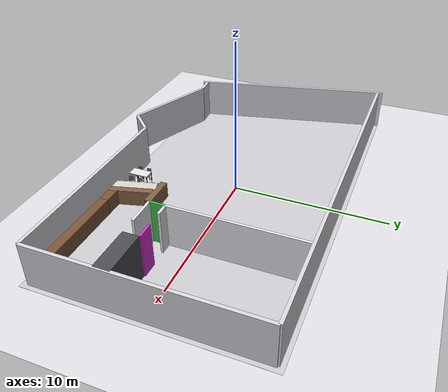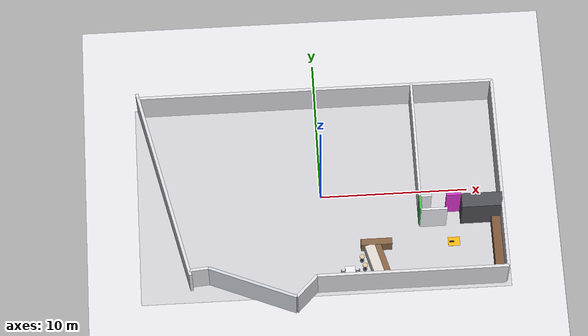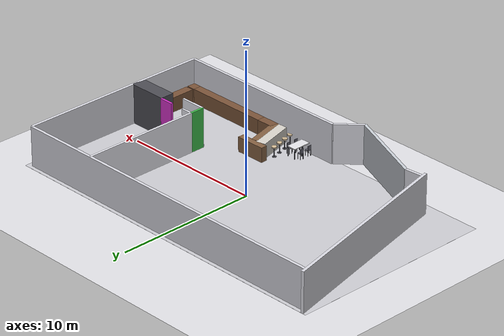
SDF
<sdf version="1.8">
 <world name="restaurant_blueprint_world">
  <model name="ground_plane">
   <static>true</static>
   <link name="link">
    <collision name="collision">
     <geometry><plane><normal>0 0 1</normal><size>120 120</size></plane></geometry>
    </collision>
    <visual name="visual">
     <geometry><plane><normal>0 0 1</normal><size>120 120</size></plane></geometry>
     <material>
      <ambient>0.88 0.88 0.90 1</ambient>
      <diffuse>0.88 0.88 0.90 1</diffuse>
      <specular>0.1 0.1 0.1 1</specular>
     </material>
    </visual>
   </link>
  </model>
  <model name="restaurant_boundary">
   <static>true</static>
   <link name="interior_floor">
    <visual name="floor_vis">
     <pose>0.0 0.0 0.002 0 0 0</pose>
     <geometry><box><size>25.0 14.5 0.004</size></box></geometry>
     <material>
      <ambient>0.80 0.80 0.82 1</ambient>
      <diffuse>0.80 0.80 0.82 1</diffuse>
      <specular>0.15 0.15 0.15 1</specular>
     </material>
    </visual>
   </link>
   <link name="perimeter_walls">
    <visual name="wall_north_vis">
     <pose>0.0 6.890 1.40 0 0 0</pose>
     <geometry><box><size>24.27 0.20 2.80</size></box></geometry>
     <material><ambient>0.85 0.85 0.88 1</ambient><diffuse>0.85 0.85 0.88 1</diffuse></material>
    </visual>
    <collision name="wall_north_col">
     <pose>0.0 6.890 1.40 0 0 0</pose>
     <geometry><box><size>24.27 0.20 2.80</size></box></geometry>
    </collision>
    <visual name="wall_east_vis">
     <pose>12.135 0.0 1.40 0 0 -1.570796</pose>
     <geometry><box><size>13.78 0.20 2.80</size></box></geometry>
     <material><ambient>0.85 0.85 0.88 1</ambient><diffuse>0.85 0.85 0.88 1</diffuse></material>
    </visual>
    <collision name="wall_east_col">
     <pose>12.135 0.0 1.40 0 0 -1.570796</pose>
     <geometry><box><size>13.78 0.20 2.80</size></box></geometry>
    </collision>
    <visual name="wall_south_east_vis">
     <pose>5.745 -6.890 1.40 0 0 0</pose>
     <geometry><box><size>12.78 0.20 2.80</size></box></geometry>
     <material><ambient>0.85 0.85 0.88 1</ambient><diffuse>0.85 0.85 0.88 1</diffuse></material>
    </visual>
    <collision name="wall_south_east_col">
     <pose>5.745 -6.890 1.40 0 0 0</pose>
     <geometry><box><size>12.78 0.20 2.80</size></box></geometry>
    </collision>
    <visual name="wall_entrance_slant_right_vis">
     <pose>-1.352 -7.597 1.40 0 0 -2.356194</pose>
     <geometry><box><size>2.00 0.20 2.80</size></box></geometry>
     <material><ambient>0.85 0.85 0.88 1</ambient><diffuse>0.85 0.85 0.88 1</diffuse></material>
    </visual>
    <collision name="wall_entrance_slant_right_col">
     <pose>-1.352 -7.597 1.40 0 0 -2.356194</pose>
     <geometry><box><size>2.00 0.20 2.80</size></box></geometry>
    </collision>
    <visual name="wall_main_entrance_vis">
     <pose>-4.946 -7.108 1.40 0 0 2.74889</pose>
     <geometry><box><size>6.25 0.20 2.80</size></box></geometry>
     <material><ambient>0.80 0.82 0.85 1</ambient><diffuse>0.80 0.82 0.85 1</diffuse></material>
    </visual>
    <collision name="wall_main_entrance_col">
     <pose>-4.946 -7.108 1.40 0 0 2.74889</pose>
     <geometry><box><size>6.25 0.20 2.80</size></box></geometry>
    </collision>
    <visual name="wall_entrance_indent_vis">
     <pose>-8.481 -5.969 1.40 0 0 -3.0545</pose>
     <geometry><box><size>1.30 0.20 2.80</size></box></geometry>
     <material><ambient>0.85 0.85 0.88 1</ambient><diffuse>0.85 0.85 0.88 1</diffuse></material>
    </visual>
    <collision name="wall_entrance_indent_col">
     <pose>-8.481 -5.969 1.40 0 0 -3.0545</pose>
     <geometry><box><size>1.30 0.20 2.80</size></box></geometry>
    </collision>
    <visual name="wall_west_slant_vis">
     <pose>-10.631 0.432 1.40 0 0 1.7994</pose>
     <geometry><box><size>13.96 0.20 2.80</size></box></geometry>
     <material><ambient>0.85 0.85 0.88 1</ambient><diffuse>0.85 0.85 0.88 1</diffuse></material>
    </visual>
    <collision name="wall_west_slant_col">
     <pose>-10.631 0.432 1.40 0 0 1.7994</pose>
     <geometry><box><size>13.96 0.20 2.80</size></box></geometry>
    </collision>
   </link>
   <link name="kitchen_walls">
    <visual name="kitchen_vert_main_vis">
     <pose>6.605 2.690 1.40 0 0 -1.570796</pose>
     <geometry><box><size>8.40 0.15 2.80</size></box></geometry>
     <material><ambient>0.92 0.92 0.95 1</ambient><diffuse>0.92 0.92 0.95 1</diffuse></material>
    </visual>
    <collision name="kitchen_vert_main_col">
     <pose>6.605 2.690 1.40 0 0 -1.570796</pose>
     <geometry><box><size>8.40 0.15 2.80</size></box></geometry>
    </collision>
    <visual name="wall_robot_dock_green_vis">
     <pose>6.605 -2.010 1.40 0 0 -1.570796</pose>
     <geometry><box><size>1.00 0.15 2.80</size></box></geometry>
     <material>
      <ambient>0.20 0.65 0.25 1</ambient>
      <diffuse>0.25 0.75 0.30 1</diffuse>
      <specular>0.1 0.1 0.1 1</specular>
     </material>
    </visual>
    <collision name="wall_robot_dock_green_col">
     <pose>6.605 -2.010 1.40 0 0 -1.570796</pose>
     <geometry><box><size>1.00 0.15 2.80</size></box></geometry>
    </collision>
    <visual name="wall_dock_stub_vis">
     <pose>6.995 -1.510 1.40 0 0 0</pose>
     <geometry><box><size>0.78 0.15 2.80</size></box></geometry>
     <material><ambient>0.92 0.92 0.95 1</ambient><diffuse>0.92 0.92 0.95 1</diffuse></material>
    </visual>
    <collision name="wall_dock_stub_col">
     <pose>6.995 -1.510 1.40 0 0 0</pose>
     <geometry><box><size>0.78 0.15 2.80</size></box></geometry>
    </collision>
    <visual name="wall_dock_magenta_vis">
     <pose>8.885 -1.510 1.40 0 0 0</pose>
     <geometry><box><size>1.00 0.15 2.80</size></box></geometry>
     <material><ambient>0.75 0.15 0.70 1</ambient><diffuse>0.85 0.20 0.80 1</diffuse></material>
    </visual>
    <collision name="wall_dock_magenta_col">
     <pose>8.885 -1.510 1.40 0 0 0</pose>
     <geometry><box><size>1.00 0.15 2.80</size></box></geometry>
    </collision>
    <visual name="kitchen_oven_block_vis">
     <pose>10.760 -2.010 1.40 0 0 0</pose>
     <geometry><box><size>2.75 1.00 2.80</size></box></geometry>
     <material><ambient>0.30 0.30 0.33 1</ambient><diffuse>0.30 0.30 0.33 1</diffuse></material>
    </visual>
    <collision name="kitchen_oven_block_col">
     <pose>10.760 -2.010 1.40 0 0 0</pose>
     <geometry><box><size>2.75 1.00 2.80</size></box></geometry>
    </collision>
    <visual name="kitchen_horiz_left_vis">
     <pose>7.495 -2.510 1.40 0 0 0</pose>
     <geometry><box><size>1.78 0.15 2.80</size></box></geometry>
     <material><ambient>0.92 0.92 0.95 1</ambient><diffuse>0.92 0.92 0.95 1</diffuse></material>
    </visual>
    <collision name="kitchen_horiz_left_col">
     <pose>7.495 -2.510 1.40 0 0 0</pose>
     <geometry><box><size>1.78 0.15 2.80</size></box></geometry>
    </collision>
    <visual name="robot_dock_pad_vis">
     <pose>8.85 -3.80 0.008 0 0 3.14159</pose>
     <geometry><box><size>0.80 0.65 0.016</size></box></geometry>
     <material><ambient>0.95 0.70 0.05 1</ambient><diffuse>0.95 0.70 0.05 1</diffuse></material>
    </visual>
    <visual name="robot_dock_arrow_vis">
     <pose>8.70 -3.80 0.018 0 0 3.14159</pose>
     <geometry><box><size>0.30 0.12 0.005</size></box></geometry>
     <material><ambient>0.1 0.1 0.1 1</ambient><diffuse>0.1 0.1 0.1 1</diffuse></material>
    </visual>
   </link>
   <link name="area_08_furniture">
    <visual name="standing_counter_east_vis">
     <pose>11.790 -4.300 0.525 0 0 0</pose>
     <geometry><box><size>0.69 3.58 1.05</size></box></geometry>
     <material><ambient>0.32 0.22 0.15 1</ambient><diffuse>0.48 0.33 0.22 1</diffuse></material>
    </visual>
    <collision name="standing_counter_east_col">
     <pose>11.790 -4.300 0.525 0 0 0</pose>
     <geometry><box><size>0.69 3.58 1.05</size></box></geometry>
    </collision>
    <visual name="standing_counter_corner_vis">
     <pose>11.790 -6.545 0.525 0 0 0</pose>
     <geometry><box><size>0.69 0.69 1.05</size></box></geometry>
     <material><ambient>0.32 0.22 0.15 1</ambient><diffuse>0.48 0.33 0.22 1</diffuse></material>
    </visual>
    <collision name="standing_counter_corner_col">
     <pose>11.790 -6.545 0.525 0 0 0</pose>
     <geometry><box><size>0.69 0.69 1.05</size></box></geometry>
    </collision>
    <visual name="standing_counter_south_vis">
     <pose>8.435 -6.545 0.525 0 0 0</pose>
     <geometry><box><size>6.02 0.69 1.05</size></box></geometry>
     <material><ambient>0.32 0.22 0.15 1</ambient><diffuse>0.48 0.33 0.22 1</diffuse></material>
    </visual>
    <collision name="standing_counter_south_col">
     <pose>8.435 -6.545 0.525 0 0 0</pose>
     <geometry><box><size>6.02 0.69 1.05</size></box></geometry>
    </collision>
    <visual name="counter_south_join_vis">
     <pose>4.762 -6.545 0.525 0 0 0</pose>
     <geometry><box><size>1.325 0.69 1.05</size></box></geometry>
     <material><ambient>0.32 0.22 0.15 1</ambient><diffuse>0.48 0.33 0.22 1</diffuse></material>
    </visual>
    <collision name="counter_south_join_col">
     <pose>4.762 -6.545 0.525 0 0 0</pose>
     <geometry><box><size>1.325 0.69 1.05</size></box></geometry>
    </collision>
    <visual name="bar_04_inner_slanted_vis">
     <pose>3.968 -5.520 0.525 0 0 0.2618</pose>
     <geometry><box><size>0.44 2.837 1.05</size></box></geometry>
     <material><ambient>0.36 0.26 0.18 1</ambient><diffuse>0.52 0.38 0.26 1</diffuse></material>
    </visual>
    <collision name="bar_04_inner_slanted_col">
     <pose>3.968 -5.520 0.525 0 0 0.2618</pose>
     <geometry><box><size>0.44 2.837 1.05</size></box></geometry>
    </collision>
    <visual name="bar_04_outer_slanted_vis">
     <pose>3.422 -5.520 0.525 0 0 0.2618</pose>
     <geometry><box><size>0.69 2.837 1.05</size></box></geometry>
     <material><ambient>0.82 0.80 0.78 1</ambient><diffuse>0.85 0.83 0.80 1</diffuse></material>
    </visual>
    <collision name="bar_04_outer_slanted_col">
     <pose>3.422 -5.520 0.525 0 0 0.2618</pose>
     <geometry><box><size>0.69 2.837 1.05</size></box></geometry>
    </collision>
    <visual name="bar_04_top_cap_vis">
     <pose>3.550 -3.930 0.525 0 0 0</pose>
     <geometry><box><size>2.11 0.44 1.05</size></box></geometry>
     <material><ambient>0.36 0.26 0.18 1</ambient><diffuse>0.52 0.38 0.26 1</diffuse></material>
    </visual>
    <collision name="bar_04_top_cap_col">
     <pose>3.550 -3.930 0.525 0 0 0</pose>
     <geometry><box><size>2.11 0.44 1.05</size></box></geometry>
    </collision>
    <visual name="stool_1_cushion_vis">
     <pose>3.022 -6.733 0.710 0 0 0</pose>
     <geometry><cylinder><radius>0.17</radius><length>0.08</length></cylinder></geometry>
     <material><ambient>0.80 0.70 0.55 1</ambient><diffuse>0.85 0.75 0.60 1</diffuse></material>
    </visual>
    <visual name="stool_1_stem_vis">
     <pose>3.022 -6.733 0.345 0 0 0</pose>
     <geometry><cylinder><radius>0.035</radius><length>0.65</length></cylinder></geometry>
     <material><ambient>0.20 0.20 0.22 1</ambient><diffuse>0.25 0.25 0.28 1</diffuse></material>
    </visual>
    <visual name="stool_1_base_vis">
     <pose>3.022 -6.733 0.010 0 0 0</pose>
     <geometry><cylinder><radius>0.14</radius><length>0.02</length></cylinder></geometry>
     <material><ambient>0.20 0.20 0.22 1</ambient><diffuse>0.25 0.25 0.28 1</diffuse></material>
    </visual>
    <collision name="stool_1_cushion_col">
     <pose>3.022 -6.733 0.710 0 0 0</pose>
     <geometry><cylinder><radius>0.17</radius><length>0.08</length></cylinder></geometry>
    </collision>
    <collision name="stool_1_stem_col">
     <pose>3.022 -6.733 0.345 0 0 0</pose>
     <geometry><cylinder><radius>0.035</radius><length>0.65</length></cylinder></geometry>
    </collision>
    <collision name="stool_1_base_col">
     <pose>3.022 -6.733 0.010 0 0 0</pose>
     <geometry><cylinder><radius>0.14</radius><length>0.02</length></cylinder></geometry>
    </collision>
    <visual name="stool_2_cushion_vis">
     <pose>2.854 -6.105 0.710 0 0 0</pose>
     <geometry><cylinder><radius>0.17</radius><length>0.08</length></cylinder></geometry>
     <material><ambient>0.80 0.70 0.55 1</ambient><diffuse>0.85 0.75 0.60 1</diffuse></material>
    </visual>
    <visual name="stool_2_stem_vis">
     <pose>2.854 -6.105 0.345 0 0 0</pose>
     <geometry><cylinder><radius>0.035</radius><length>0.65</length></cylinder></geometry>
     <material><ambient>0.20 0.20 0.22 1</ambient><diffuse>0.25 0.25 0.28 1</diffuse></material>
    </visual>
    <visual name="stool_2_base_vis">
     <pose>2.854 -6.105 0.010 0 0 0</pose>
     <geometry><cylinder><radius>0.14</radius><length>0.02</length></cylinder></geometry>
     <material><ambient>0.20 0.20 0.22 1</ambient><diffuse>0.25 0.25 0.28 1</diffuse></material>
    </visual>
    <collision name="stool_2_cushion_col">
     <pose>2.854 -6.105 0.710 0 0 0</pose>
     <geometry><cylinder><radius>0.17</radius><length>0.08</length></cylinder></geometry>
    </collision>
    <collision name="stool_2_stem_col">
     <pose>2.854 -6.105 0.345 0 0 0</pose>
     <geometry><cylinder><radius>0.035</radius><length>0.65</length></cylinder></geometry>
    </collision>
    <collision name="stool_2_base_col">
     <pose>2.854 -6.105 0.010 0 0 0</pose>
     <geometry><cylinder><radius>0.14</radius><length>0.02</length></cylinder></geometry>
    </collision>
    <visual name="stool_3_cushion_vis">
     <pose>2.686 -5.478 0.710 0 0 0</pose>
     <geometry><cylinder><radius>0.17</radius><length>0.08</length></cylinder></geometry>
     <material><ambient>0.80 0.70 0.55 1</ambient><diffuse>0.85 0.75 0.60 1</diffuse></material>
    </visual>
    <visual name="stool_3_stem_vis">
     <pose>2.686 -5.478 0.345 0 0 0</pose>
     <geometry><cylinder><radius>0.035</radius><length>0.65</length></cylinder></geometry>
     <material><ambient>0.20 0.20 0.22 1</ambient><diffuse>0.25 0.25 0.28 1</diffuse></material>
    </visual>
    <visual name="stool_3_base_vis">
     <pose>2.686 -5.478 0.010 0 0 0</pose>
     <geometry><cylinder><radius>0.14</radius><length>0.02</length></cylinder></geometry>
     <material><ambient>0.20 0.20 0.22 1</ambient><diffuse>0.25 0.25 0.28 1</diffuse></material>
    </visual>
    <collision name="stool_3_cushion_col">
     <pose>2.686 -5.478 0.710 0 0 0</pose>
     <geometry><cylinder><radius>0.17</radius><length>0.08</length></cylinder></geometry>
    </collision>
    <collision name="stool_3_stem_col">
     <pose>2.686 -5.478 0.345 0 0 0</pose>
     <geometry><cylinder><radius>0.035</radius><length>0.65</length></cylinder></geometry>
    </collision>
    <collision name="stool_3_base_col">
     <pose>2.686 -5.478 0.010 0 0 0</pose>
     <geometry><cylinder><radius>0.14</radius><length>0.02</length></cylinder></geometry>
    </collision>
    <visual name="stool_4_cushion_vis">
     <pose>2.518 -4.850 0.710 0 0 0</pose>
     <geometry><cylinder><radius>0.17</radius><length>0.08</length></cylinder></geometry>
     <material><ambient>0.80 0.70 0.55 1</ambient><diffuse>0.85 0.75 0.60 1</diffuse></material>
    </visual>
    <visual name="stool_4_stem_vis">
     <pose>2.518 -4.850 0.345 0 0 0</pose>
     <geometry><cylinder><radius>0.035</radius><length>0.65</length></cylinder></geometry>
     <material><ambient>0.20 0.20 0.22 1</ambient><diffuse>0.25 0.25 0.28 1</diffuse></material>
    </visual>
    <visual name="stool_4_base_vis">
     <pose>2.518 -4.850 0.010 0 0 0</pose>
     <geometry><cylinder><radius>0.14</radius><length>0.02</length></cylinder></geometry>
     <material><ambient>0.20 0.20 0.22 1</ambient><diffuse>0.25 0.25 0.28 1</diffuse></material>
    </visual>
    <collision name="stool_4_cushion_col">
     <pose>2.518 -4.850 0.710 0 0 0</pose>
     <geometry><cylinder><radius>0.17</radius><length>0.08</length></cylinder></geometry>
    </collision>
    <collision name="stool_4_stem_col">
     <pose>2.518 -4.850 0.345 0 0 0</pose>
     <geometry><cylinder><radius>0.035</radius><length>0.65</length></cylinder></geometry>
    </collision>
    <collision name="stool_4_base_col">
     <pose>2.518 -4.850 0.010 0 0 0</pose>
     <geometry><cylinder><radius>0.14</radius><length>0.02</length></cylinder></geometry>
    </collision>
   </link>
   <link name="group01">
    <visual name="group01_table_vis">
     <pose>1.661 -6.187 0.725 0.0000 0.0000 0.0000</pose>
     <geometry><box><size>0.67 1.38 0.05</size></box></geometry>
     <material><ambient>0.85 0.85 0.88 1</ambient><diffuse>0.90 0.90 0.92 1</diffuse></material>
    </visual>
    <visual name="group01_table_leg_1_vis">
     <pose>1.961 -5.532 0.350 0 0 0.0000</pose>
     <geometry><box><size>0.04 0.04 0.70</size></box></geometry>
     <material><ambient>0.22 0.22 0.25 1</ambient><diffuse>0.28 0.28 0.32 1</diffuse></material>
    </visual>
    <visual name="group01_table_leg_2_vis">
     <pose>1.361 -5.532 0.350 0 0 0.0000</pose>
     <geometry><box><size>0.04 0.04 0.70</size></box></geometry>
     <material><ambient>0.22 0.22 0.25 1</ambient><diffuse>0.28 0.28 0.32 1</diffuse></material>
    </visual>
    <visual name="group01_table_leg_3_vis">
     <pose>1.961 -6.152 0.350 0 0 0.0000</pose>
     <geometry><box><size>0.04 0.04 0.70</size></box></geometry>
     <material><ambient>0.22 0.22 0.25 1</ambient><diffuse>0.28 0.28 0.32 1</diffuse></material>
    </visual>
    <visual name="group01_table_leg_4_vis">
     <pose>1.361 -6.152 0.350 0 0 0.0000</pose>
     <geometry><box><size>0.04 0.04 0.70</size></box></geometry>
     <material><ambient>0.22 0.22 0.25 1</ambient><diffuse>0.28 0.28 0.32 1</diffuse></material>
    </visual>
    <visual name="group01_table_leg_5_vis">
     <pose>1.961 -6.222 0.350 0 0 0.0000</pose>
     <geometry><box><size>0.04 0.04 0.70</size></box></geometry>
     <material><ambient>0.22 0.22 0.25 1</ambient><diffuse>0.28 0.28 0.32 1</diffuse></material>
    </visual>
    <visual name="group01_table_leg_6_vis">
     <pose>1.361 -6.222 0.350 0 0 0.0000</pose>
     <geometry><box><size>0.04 0.04 0.70</size></box></geometry>
     <material><ambient>0.22 0.22 0.25 1</ambient><diffuse>0.28 0.28 0.32 1</diffuse></material>
    </visual>
    <visual name="group01_table_leg_7_vis">
     <pose>1.961 -6.842 0.350 0 0 0.0000</pose>
     <geometry><box><size>0.04 0.04 0.70</size></box></geometry>
     <material><ambient>0.22 0.22 0.25 1</ambient><diffuse>0.28 0.28 0.32 1</diffuse></material>
    </visual>
    <visual name="group01_table_leg_8_vis">
     <pose>1.361 -6.842 0.350 0 0 0.0000</pose>
     <geometry><box><size>0.04 0.04 0.70</size></box></geometry>
     <material><ambient>0.22 0.22 0.25 1</ambient><diffuse>0.28 0.28 0.32 1</diffuse></material>
    </visual>
    <collision name="group01_table_col">
     <pose>1.661 -6.187 0.725 0.0000 0.0000 0.0000</pose>
     <geometry><box><size>0.67 1.38 0.05</size></box></geometry>
    </collision>
    <collision name="group01_table_leg_1_col">
     <pose>1.961 -5.532 0.350 0 0 0.0000</pose>
     <geometry><box><size>0.04 0.04 0.70</size></box></geometry>
    </collision>
    <collision name="group01_table_leg_2_col">
     <pose>1.361 -5.532 0.350 0 0 0.0000</pose>
     <geometry><box><size>0.04 0.04 0.70</size></box></geometry>
    </collision>
    <collision name="group01_table_leg_3_col">
     <pose>1.961 -6.152 0.350 0 0 0.0000</pose>
     <geometry><box><size>0.04 0.04 0.70</size></box></geometry>
    </collision>
    <collision name="group01_table_leg_4_col">
     <pose>1.361 -6.152 0.350 0 0 0.0000</pose>
     <geometry><box><size>0.04 0.04 0.70</size></box></geometry>
    </collision>
    <collision name="group01_table_leg_5_col">
     <pose>1.961 -6.222 0.350 0 0 0.0000</pose>
     <geometry><box><size>0.04 0.04 0.70</size></box></geometry>
    </collision>
    <collision name="group01_table_leg_6_col">
     <pose>1.361 -6.222 0.350 0 0 0.0000</pose>
     <geometry><box><size>0.04 0.04 0.70</size></box></geometry>
    </collision>
    <collision name="group01_table_leg_7_col">
     <pose>1.961 -6.842 0.350 0 0 0.0000</pose>
     <geometry><box><size>0.04 0.04 0.70</size></box></geometry>
    </collision>
    <collision name="group01_table_leg_8_col">
     <pose>1.361 -6.842 0.350 0 0 0.0000</pose>
     <geometry><box><size>0.04 0.04 0.70</size></box></geometry>
    </collision>
    <visual name="group01_chair_e1_seat_vis">
     <pose>2.157 -5.850 0.430 0.0000 0.0000 0.0000</pose>
     <geometry><box><size>0.28 0.28 0.04</size></box></geometry>
     <material><ambient>0.30 0.30 0.33 1</ambient><diffuse>0.40 0.40 0.45 1</diffuse></material>
    </visual>
    <visual name="group01_chair_e1_back_vis">
     <pose>2.277 -5.850 0.600 0 0 0.0000</pose>
     <geometry><box><size>0.04 0.28 0.30</size></box></geometry>
     <material><ambient>0.30 0.30 0.33 1</ambient><diffuse>0.40 0.40 0.45 1</diffuse></material>
    </visual>
    <visual name="group01_chair_e1_leg_1_vis">
     <pose>2.272 -5.735 0.205 0 0 0.0000</pose>
     <geometry><box><size>0.025 0.025 0.41</size></box></geometry>
     <material><ambient>0.20 0.20 0.22 1</ambient><diffuse>0.25 0.25 0.28 1</diffuse></material>
    </visual>
    <visual name="group01_chair_e1_leg_2_vis">
     <pose>2.042 -5.735 0.205 0 0 0.0000</pose>
     <geometry><box><size>0.025 0.025 0.41</size></box></geometry>
     <material><ambient>0.20 0.20 0.22 1</ambient><diffuse>0.25 0.25 0.28 1</diffuse></material>
    </visual>
    <visual name="group01_chair_e1_leg_3_vis">
     <pose>2.272 -5.965 0.205 0 0 0.0000</pose>
     <geometry><box><size>0.025 0.025 0.41</size></box></geometry>
     <material><ambient>0.20 0.20 0.22 1</ambient><diffuse>0.25 0.25 0.28 1</diffuse></material>
    </visual>
    <visual name="group01_chair_e1_leg_4_vis">
     <pose>2.042 -5.965 0.205 0 0 0.0000</pose>
     <geometry><box><size>0.025 0.025 0.41</size></box></geometry>
     <material><ambient>0.20 0.20 0.22 1</ambient><diffuse>0.25 0.25 0.28 1</diffuse></material>
    </visual>
    <collision name="group01_chair_e1_seat_col">
     <pose>2.157 -5.850 0.430 0.0000 0.0000 0.0000</pose>
     <geometry><box><size>0.28 0.28 0.04</size></box></geometry>
    </collision>
    <collision name="group01_chair_e1_back_col">
     <pose>2.277 -5.850 0.600 0 0 0.0000</pose>
     <geometry><box><size>0.04 0.28 0.30</size></box></geometry>
    </collision>
    <collision name="group01_chair_e1_leg_1_col">
     <pose>2.272 -5.735 0.205 0 0 0.0000</pose>
     <geometry><box><size>0.025 0.025 0.41</size></box></geometry>
    </collision>
    <collision name="group01_chair_e1_leg_2_col">
     <pose>2.042 -5.735 0.205 0 0 0.0000</pose>
     <geometry><box><size>0.025 0.025 0.41</size></box></geometry>
    </collision>
    <collision name="group01_chair_e1_leg_3_col">
     <pose>2.272 -5.965 0.205 0 0 0.0000</pose>
     <geometry><box><size>0.025 0.025 0.41</size></box></geometry>
    </collision>
    <collision name="group01_chair_e1_leg_4_col">
     <pose>2.042 -5.965 0.205 0 0 0.0000</pose>
     <geometry><box><size>0.025 0.025 0.41</size></box></geometry>
    </collision>
    <visual name="group01_chair_e2_seat_vis">
     <pose>2.157 -6.520 0.430 0.0000 0.0000 0.0000</pose>
     <geometry><box><size>0.28 0.28 0.04</size></box></geometry>
     <material><ambient>0.30 0.30 0.33 1</ambient><diffuse>0.40 0.40 0.45 1</diffuse></material>
    </visual>
    <visual name="group01_chair_e2_back_vis">
     <pose>2.277 -6.520 0.600 0 0 0.0000</pose>
     <geometry><box><size>0.04 0.28 0.30</size></box></geometry>
     <material><ambient>0.30 0.30 0.33 1</ambient><diffuse>0.40 0.40 0.45 1</diffuse></material>
    </visual>
    <visual name="group01_chair_e2_leg_1_vis">
     <pose>2.272 -6.405 0.205 0 0 0.0000</pose>
     <geometry><box><size>0.025 0.025 0.41</size></box></geometry>
     <material><ambient>0.20 0.20 0.22 1</ambient><diffuse>0.25 0.25 0.28 1</diffuse></material>
    </visual>
    <visual name="group01_chair_e2_leg_2_vis">
     <pose>2.042 -6.405 0.205 0 0 0.0000</pose>
     <geometry><box><size>0.025 0.025 0.41</size></box></geometry>
     <material><ambient>0.20 0.20 0.22 1</ambient><diffuse>0.25 0.25 0.28 1</diffuse></material>
    </visual>
    <visual name="group01_chair_e2_leg_3_vis">
     <pose>2.272 -6.635 0.205 0 0 0.0000</pose>
     <geometry><box><size>0.025 0.025 0.41</size></box></geometry>
     <material><ambient>0.20 0.20 0.22 1</ambient><diffuse>0.25 0.25 0.28 1</diffuse></material>
    </visual>
    <visual name="group01_chair_e2_leg_4_vis">
     <pose>2.042 -6.635 0.205 0 0 0.0000</pose>
     <geometry><box><size>0.025 0.025 0.41</size></box></geometry>
     <material><ambient>0.20 0.20 0.22 1</ambient><diffuse>0.25 0.25 0.28 1</diffuse></material>
    </visual>
    <collision name="group01_chair_e2_seat_col">
     <pose>2.157 -6.520 0.430 0.0000 0.0000 0.0000</pose>
     <geometry><box><size>0.28 0.28 0.04</size></box></geometry>
    </collision>
    <collision name="group01_chair_e2_back_col">
     <pose>2.277 -6.520 0.600 0 0 0.0000</pose>
     <geometry><box><size>0.04 0.28 0.30</size></box></geometry>
    </collision>
    <collision name="group01_chair_e2_leg_1_col">
     <pose>2.272 -6.405 0.205 0 0 0.0000</pose>
     <geometry><box><size>0.025 0.025 0.41</size></box></geometry>
    </collision>
    <collision name="group01_chair_e2_leg_2_col">
     <pose>2.042 -6.405 0.205 0 0 0.0000</pose>
     <geometry><box><size>0.025 0.025 0.41</size></box></geometry>
    </collision>
    <collision name="group01_chair_e2_leg_3_col">
     <pose>2.272 -6.635 0.205 0 0 0.0000</pose>
     <geometry><box><size>0.025 0.025 0.41</size></box></geometry>
    </collision>
    <collision name="group01_chair_e2_leg_4_col">
     <pose>2.042 -6.635 0.205 0 0 0.0000</pose>
     <geometry><box><size>0.025 0.025 0.41</size></box></geometry>
    </collision>
    <visual name="group01_chair_w1_seat_vis">
     <pose>1.165 -5.850 0.430 0.0000 0.0000 0.0000</pose>
     <geometry><box><size>0.28 0.28 0.04</size></box></geometry>
     <material><ambient>0.30 0.30 0.33 1</ambient><diffuse>0.40 0.40 0.45 1</diffuse></material>
    </visual>
    <visual name="group01_chair_w1_back_vis">
     <pose>1.045 -5.850 0.600 0 0 0.0000</pose>
     <geometry><box><size>0.04 0.28 0.30</size></box></geometry>
     <material><ambient>0.30 0.30 0.33 1</ambient><diffuse>0.40 0.40 0.45 1</diffuse></material>
    </visual>
    <visual name="group01_chair_w1_leg_1_vis">
     <pose>1.280 -5.735 0.205 0 0 0.0000</pose>
     <geometry><box><size>0.025 0.025 0.41</size></box></geometry>
     <material><ambient>0.20 0.20 0.22 1</ambient><diffuse>0.25 0.25 0.28 1</diffuse></material>
    </visual>
    <visual name="group01_chair_w1_leg_2_vis">
     <pose>1.050 -5.735 0.205 0 0 0.0000</pose>
     <geometry><box><size>0.025 0.025 0.41</size></box></geometry>
     <material><ambient>0.20 0.20 0.22 1</ambient><diffuse>0.25 0.25 0.28 1</diffuse></material>
    </visual>
    <visual name="group01_chair_w1_leg_3_vis">
     <pose>1.280 -5.965 0.205 0 0 0.0000</pose>
     <geometry><box><size>0.025 0.025 0.41</size></box></geometry>
     <material><ambient>0.20 0.20 0.22 1</ambient><diffuse>0.25 0.25 0.28 1</diffuse></material>
    </visual>
    <visual name="group01_chair_w1_leg_4_vis">
     <pose>1.050 -5.965 0.205 0 0 0.0000</pose>
     <geometry><box><size>0.025 0.025 0.41</size></box></geometry>
     <material><ambient>0.20 0.20 0.22 1</ambient><diffuse>0.25 0.25 0.28 1</diffuse></material>
    </visual>
    <collision name="group01_chair_w1_seat_col">
     <pose>1.165 -5.850 0.430 0.0000 0.0000 0.0000</pose>
     <geometry><box><size>0.28 0.28 0.04</size></box></geometry>
    </collision>
    <collision name="group01_chair_w1_back_col">
     <pose>1.045 -5.850 0.600 0 0 0.0000</pose>
     <geometry><box><size>0.04 0.28 0.30</size></box></geometry>
    </collision>
    <collision name="group01_chair_w1_leg_1_col">
     <pose>1.280 -5.735 0.205 0 0 0.0000</pose>
     <geometry><box><size>0.025 0.025 0.41</size></box></geometry>
    </collision>
    <collision name="group01_chair_w1_leg_2_col">
     <pose>1.050 -5.735 0.205 0 0 0.0000</pose>
     <geometry><box><size>0.025 0.025 0.41</size></box></geometry>
    </collision>
    <collision name="group01_chair_w1_leg_3_col">
     <pose>1.280 -5.965 0.205 0 0 0.0000</pose>
     <geometry><box><size>0.025 0.025 0.41</size></box></geometry>
    </collision>
    <collision name="group01_chair_w1_leg_4_col">
     <pose>1.050 -5.965 0.205 0 0 0.0000</pose>
     <geometry><box><size>0.025 0.025 0.41</size></box></geometry>
    </collision>
    <visual name="group01_chair_w2_seat_vis">
     <pose>1.165 -6.520 0.430 0.0000 0.0000 0.0000</pose>
     <geometry><box><size>0.28 0.28 0.04</size></box></geometry>
     <material><ambient>0.30 0.30 0.33 1</ambient><diffuse>0.40 0.40 0.45 1</diffuse></material>
    </visual>
    <visual name="group01_chair_w2_back_vis">
     <pose>1.045 -6.520 0.600 0 0 0.0000</pose>
     <geometry><box><size>0.04 0.28 0.30</size></box></geometry>
     <material><ambient>0.30 0.30 0.33 1</ambient><diffuse>0.40 0.40 0.45 1</diffuse></material>
    </visual>
    <visual name="group01_chair_w2_leg_1_vis">
     <pose>1.280 -6.405 0.205 0 0 0.0000</pose>
     <geometry><box><size>0.025 0.025 0.41</size></box></geometry>
     <material><ambient>0.20 0.20 0.22 1</ambient><diffuse>0.25 0.25 0.28 1</diffuse></material>
    </visual>
    <visual name="group01_chair_w2_leg_2_vis">
     <pose>1.050 -6.405 0.205 0 0 0.0000</pose>
     <geometry><box><size>0.025 0.025 0.41</size></box></geometry>
     <material><ambient>0.20 0.20 0.22 1</ambient><diffuse>0.25 0.25 0.28 1</diffuse></material>
    </visual>
    <visual name="group01_chair_w2_leg_3_vis">
     <pose>1.280 -6.635 0.205 0 0 0.0000</pose>
     <geometry><box><size>0.025 0.025 0.41</size></box></geometry>
     <material><ambient>0.20 0.20 0.22 1</ambient><diffuse>0.25 0.25 0.28 1</diffuse></material>
    </visual>
    <visual name="group01_chair_w2_leg_4_vis">
     <pose>1.050 -6.635 0.205 0 0 0.0000</pose>
     <geometry><box><size>0.025 0.025 0.41</size></box></geometry>
     <material><ambient>0.20 0.20 0.22 1</ambient><diffuse>0.25 0.25 0.28 1</diffuse></material>
    </visual>
    <collision name="group01_chair_w2_seat_col">
     <pose>1.165 -6.520 0.430 0.0000 0.0000 0.0000</pose>
     <geometry><box><size>0.28 0.28 0.04</size></box></geometry>
    </collision>
    <collision name="group01_chair_w2_back_col">
     <pose>1.045 -6.520 0.600 0 0 0.0000</pose>
     <geometry><box><size>0.04 0.28 0.30</size></box></geometry>
    </collision>
    <collision name="group01_chair_w2_leg_1_col">
     <pose>1.280 -6.405 0.205 0 0 0.0000</pose>
     <geometry><box><size>0.025 0.025 0.41</size></box></geometry>
    </collision>
    <collision name="group01_chair_w2_leg_2_col">
     <pose>1.050 -6.405 0.205 0 0 0.0000</pose>
     <geometry><box><size>0.025 0.025 0.41</size></box></geometry>
    </collision>
    <collision name="group01_chair_w2_leg_3_col">
     <pose>1.280 -6.635 0.205 0 0 0.0000</pose>
     <geometry><box><size>0.025 0.025 0.41</size></box></geometry>
    </collision>
    <collision name="group01_chair_w2_leg_4_col">
     <pose>1.050 -6.635 0.205 0 0 0.0000</pose>
     <geometry><box><size>0.025 0.025 0.41</size></box></geometry>
    </collision>
   </link>
  </model>
 </world>
</sdf>
